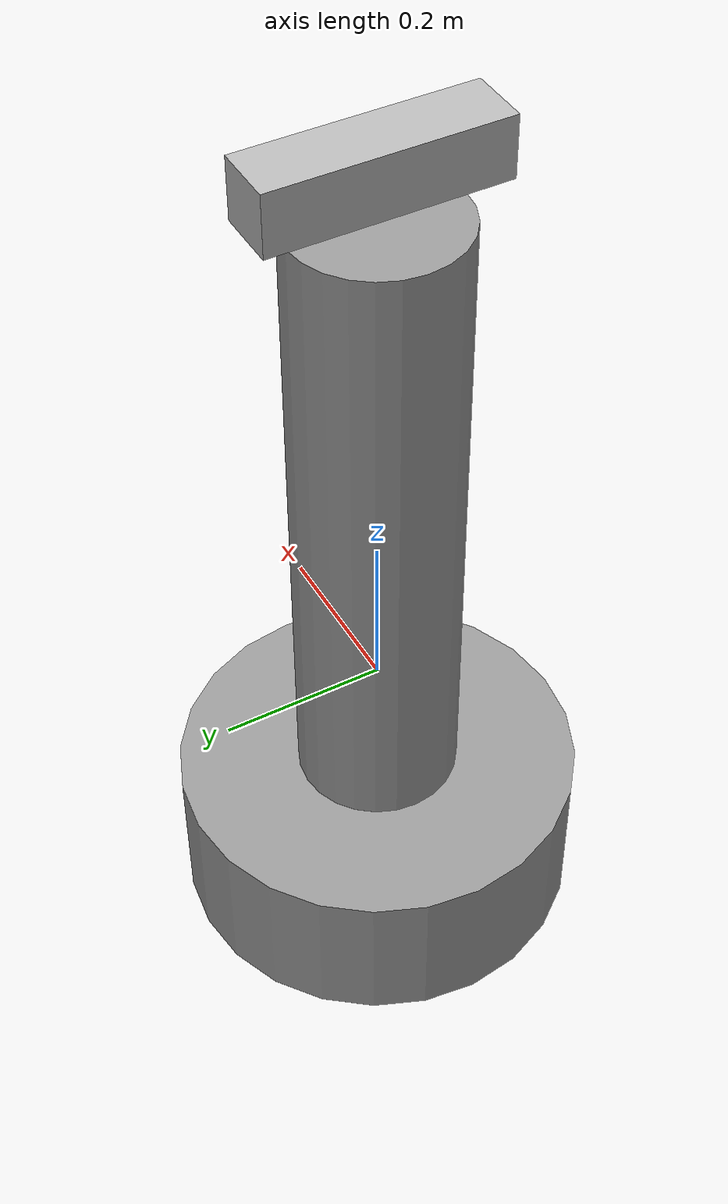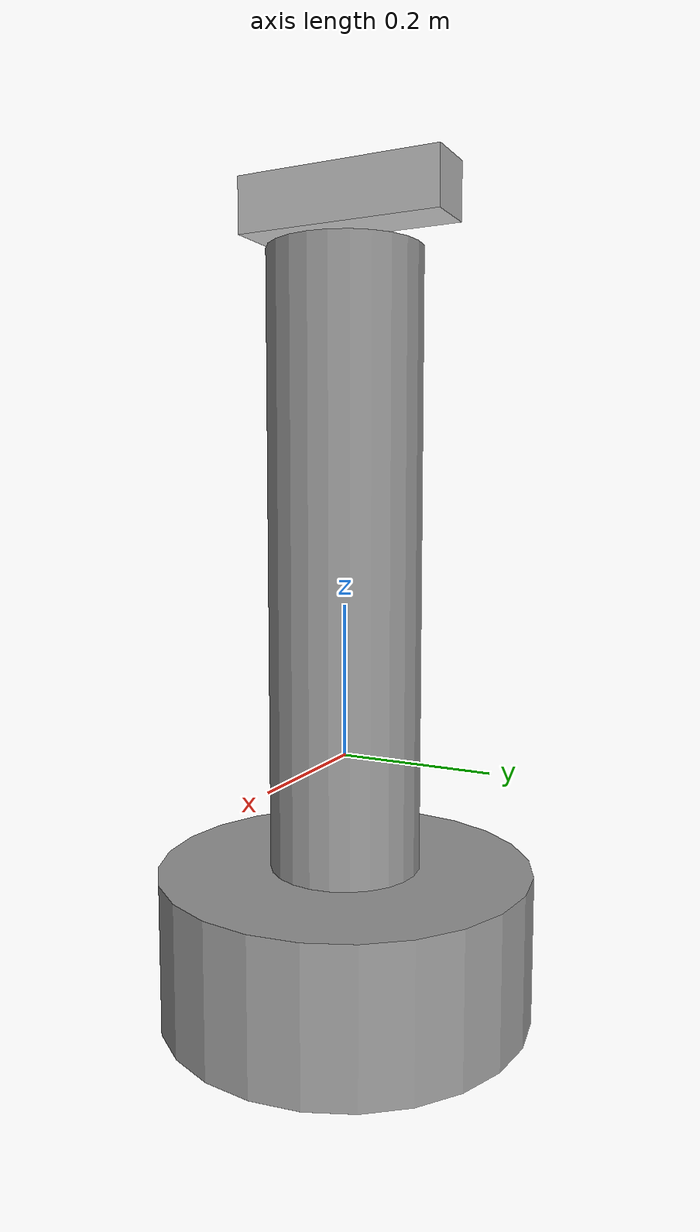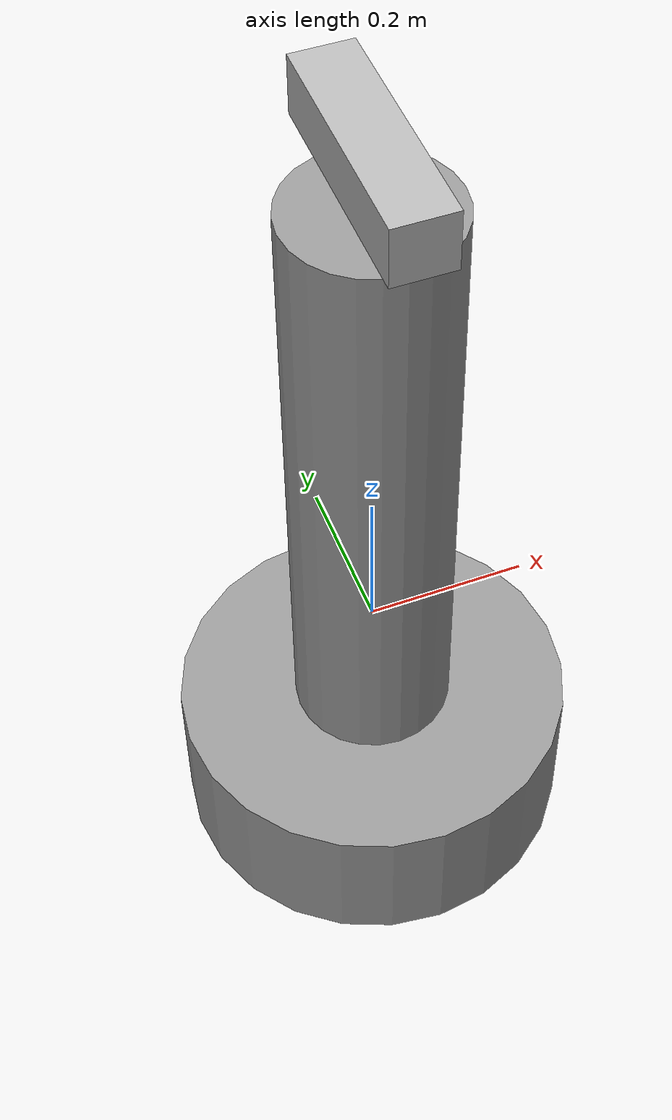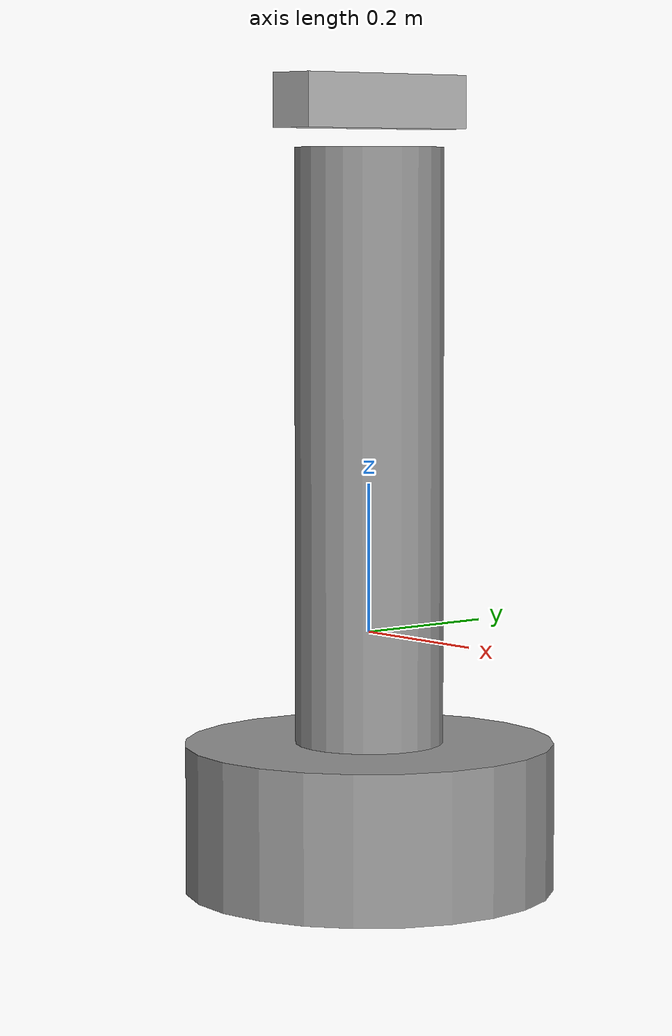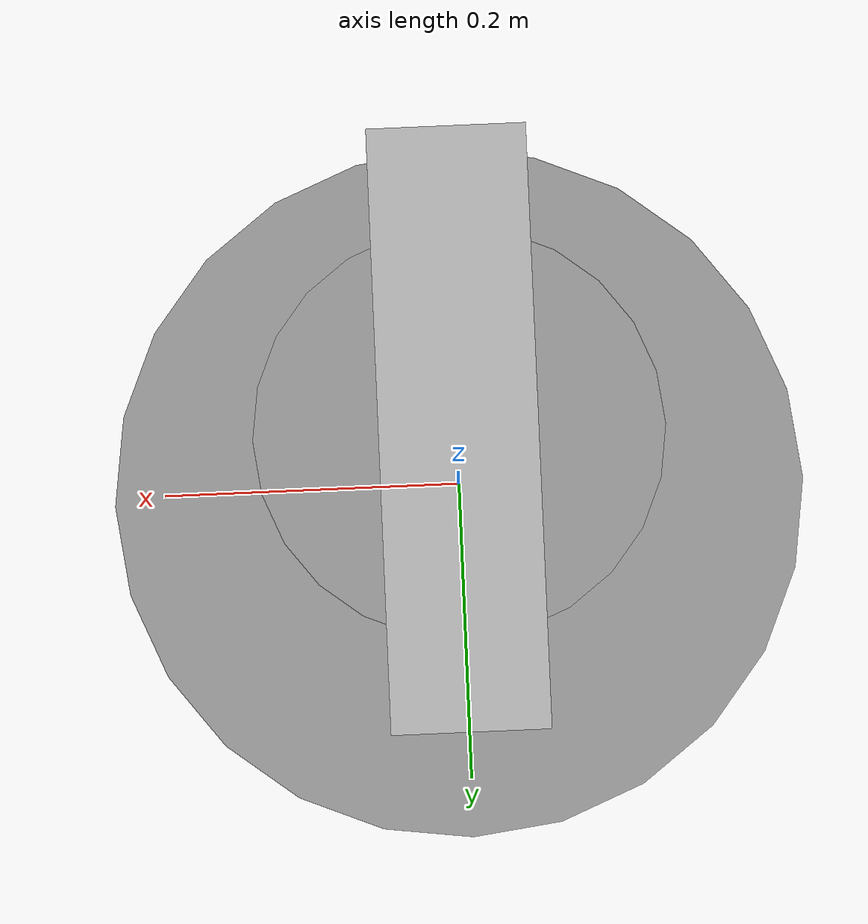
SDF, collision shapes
<?xml version='1.0'?>
<sdf version='1.6'>
  <model name='kinect_robot_1_1'>
    <link name='link_0'>
      <inertial>
        <mass>1</mass>
        <inertia>
          <ixx>0.145833</ixx>
          <ixy>0</ixy>
          <ixz>0</ixz>
          <iyy>0.145833</iyy>
          <iyz>0</iyz>
          <izz>0.125</izz>
        </inertia>
        <pose frame=''>0 0 0 0 -0 0</pose>
      </inertial>
      <pose frame=''>-0 -0 -0.25 0 -0 0</pose>
      <gravity>1</gravity>
      <self_collide>0</self_collide>
      <kinematic>0</kinematic>
      <enable_wind>0</enable_wind>
      <visual name='visual'>
        <pose frame=''>0 0 0 0 -0 0</pose>
        <geometry>
          <cylinder>
            <radius>0.25</radius>
            <length>0.2</length>
          </cylinder>
        </geometry>
        <material>
          <lighting>1</lighting>
          <script>
            <uri>file://media/materials/scripts/gazebo.material</uri>
            <name>Gazebo/Grey</name>
          </script>
          <shader type='vertex'>
            <normal_map>__default__</normal_map>
          </shader>
          <ambient>0.3 0.3 0.3 1</ambient>
          <diffuse>0.7 0.7 0.7 1</diffuse>
          <specular>0.01 0.01 0.01 1</specular>
          <emissive>0 0 0 1</emissive>
        </material>
        <transparency>0</transparency>
        <cast_shadows>1</cast_shadows>
      </visual>
      <collision name='collision'>
        <laser_retro>0</laser_retro>
        <max_contacts>10</max_contacts>
        <pose frame=''>0 0 0 0 -0 0</pose>
        <geometry>
          <cylinder>
            <radius>0.25</radius>
            <length>0.2</length>
          </cylinder>
        </geometry>
        <surface>
          <friction>
            <ode>
              <mu>1</mu>
              <mu2>1</mu2>
              <fdir1>0 0 0</fdir1>
              <slip1>0</slip1>
              <slip2>0</slip2>
            </ode>
            <torsional>
              <coefficient>1</coefficient>
              <patch_radius>0</patch_radius>
              <surface_radius>0</surface_radius>
              <use_patch_radius>1</use_patch_radius>
              <ode>
                <slip>0</slip>
              </ode>
            </torsional>
          </friction>
          <bounce>
            <restitution_coefficient>0</restitution_coefficient>
            <threshold>1e+06</threshold>
          </bounce>
          <contact>
            <collide_without_contact>0</collide_without_contact>
            <collide_without_contact_bitmask>1</collide_without_contact_bitmask>
            <collide_bitmask>1</collide_bitmask>
            <ode>
              <soft_cfm>0</soft_cfm>
              <soft_erp>0.2</soft_erp>
              <kp>1e+13</kp>
              <kd>1</kd>
              <max_vel>0.01</max_vel>
              <min_depth>0</min_depth>
            </ode>
            <bullet>
              <split_impulse>1</split_impulse>
              <split_impulse_penetration_threshold>-0.01</split_impulse_penetration_threshold>
              <soft_cfm>0</soft_cfm>
              <soft_erp>0.2</soft_erp>
              <kp>1e+13</kp>
              <kd>1</kd>
            </bullet>
          </contact>
        </surface>
      </collision>
    </link>
    <link name='link_1'>
      <inertial>
        <mass>1</mass>
        <inertia>
          <ixx>0.145833</ixx>
          <ixy>0</ixy>
          <ixz>0</ixz>
          <iyy>0.145833</iyy>
          <iyz>0</iyz>
          <izz>0.125</izz>
        </inertia>
        <pose frame=''>0 0 0 0 -0 0</pose>
      </inertial>
      <pose frame=''>-0 -0 0.25 0 -0 0</pose>
      <gravity>1</gravity>
      <self_collide>0</self_collide>
      <kinematic>0</kinematic>
      <enable_wind>0</enable_wind>
      <visual name='visual'>
        <pose frame=''>0 0 0 0 -0 0</pose>
        <geometry>
          <cylinder>
            <radius>0.1</radius>
            <length>0.8</length>
          </cylinder>
        </geometry>
        <material>
          <lighting>1</lighting>
          <script>
            <uri>file://media/materials/scripts/gazebo.material</uri>
            <name>Gazebo/Grey</name>
          </script>
          <shader type='vertex'>
            <normal_map>__default__</normal_map>
          </shader>
          <ambient>0.3 0.3 0.3 1</ambient>
          <diffuse>0.7 0.7 0.7 1</diffuse>
          <specular>0.01 0.01 0.01 1</specular>
          <emissive>0 0 0 1</emissive>
        </material>
        <transparency>0</transparency>
        <cast_shadows>1</cast_shadows>
      </visual>
      <collision name='collision'>
        <laser_retro>0</laser_retro>
        <max_contacts>10</max_contacts>
        <pose frame=''>0 0 0 0 -0 0</pose>
        <geometry>
          <cylinder>
            <radius>0.1</radius>
            <length>0.8</length>
          </cylinder>
        </geometry>
        <surface>
          <friction>
            <ode>
              <mu>1</mu>
              <mu2>1</mu2>
              <fdir1>0 0 0</fdir1>
              <slip1>0</slip1>
              <slip2>0</slip2>
            </ode>
            <torsional>
              <coefficient>1</coefficient>
              <patch_radius>0</patch_radius>
              <surface_radius>0</surface_radius>
              <use_patch_radius>1</use_patch_radius>
              <ode>
                <slip>0</slip>
              </ode>
            </torsional>
          </friction>
          <bounce>
            <restitution_coefficient>0</restitution_coefficient>
            <threshold>1e+06</threshold>
          </bounce>
          <contact>
            <collide_without_contact>0</collide_without_contact>
            <collide_without_contact_bitmask>1</collide_without_contact_bitmask>
            <collide_bitmask>1</collide_bitmask>
            <ode>
              <soft_cfm>0</soft_cfm>
              <soft_erp>0.2</soft_erp>
              <kp>1e+13</kp>
              <kd>1</kd>
              <max_vel>0.01</max_vel>
              <min_depth>0</min_depth>
            </ode>
            <bullet>
              <split_impulse>1</split_impulse>
              <split_impulse_penetration_threshold>-0.01</split_impulse_penetration_threshold>
              <soft_cfm>0</soft_cfm>
              <soft_erp>0.2</soft_erp>
              <kp>1e+13</kp>
              <kd>1</kd>
            </bullet>
          </contact>
        </surface>
      </collision>
    </link>
    <model name='kinect'>
      <pose frame=''>0.000445 0.003118 0.710751 0 -0 0</pose>
      <link name='link'>
        <inertial>
          <mass>0.1</mass>
        </inertial>
        <collision name='collision'>
          <geometry>
            <box>
              <size>0.073 0.276 0.072</size>
            </box>
          </geometry>
        </collision>
        <visual name='visual'>
          <geometry>
            <mesh>
              <uri>model://kinect/meshes/kinect.dae</uri>
            </mesh>
          </geometry>
        </visual>
        <sensor name='camera' type='depth'>
          <update_rate>20</update_rate>
          <camera name='__default__'>
            <horizontal_fov>1.0472</horizontal_fov>
            <image>
              <width>500</width>
              <height>500</height>
              <format>R8G8B8</format>
            </image>
            <clip>
              <near>0.1</near>
              <far>3000</far>
            </clip>
          </camera>
          <plugin name='camera_plugin' filename='libgazebo_ros_openni_kinect.so'>
            <baseline>0.2</baseline>
            <alwaysOn>1</alwaysOn>
            <updateRate>0.0</updateRate>
            <cameraName>camera_ir</cameraName>
            <imageTopicName>/camera/depth/image_raw</imageTopicName>
            <cameraInfoTopicName>/camera/depth/camera_info</cameraInfoTopicName>
            <depthImageTopicName>/camera/depth/image_raw</depthImageTopicName>
            <depthImageInfoTopicName>/camera/depth/camera_info</depthImageInfoTopicName>
            <pointCloudTopicName>/camera/depth/points</pointCloudTopicName>
            <frameName>camera_link</frameName>
            <pointCloudCutoff>0.1</pointCloudCutoff>
            <distortionK1>0</distortionK1>
            <distortionK2>0</distortionK2>
            <distortionK3>0</distortionK3>
            <distortionT1>0</distortionT1>
            <distortionT2>0</distortionT2>
            <CxPrime>0</CxPrime>
            <Cx>0</Cx>
            <Cy>0</Cy>
            <focalLength>0</focalLength>
            <hackBaseline>0</hackBaseline>
          </plugin>
        </sensor>
      </link>
    </model>
    <joint name='link_0_JOINT_0' type='revolute'>
      <parent>link_0</parent>
      <child>link_1</child>
      <pose frame=''>0 0 0 0 -0 0</pose>
      <axis>
        <xyz>0 0 1</xyz>
        <use_parent_model_frame>0</use_parent_model_frame>
        <limit>
          <lower>-1.79769e+308</lower>
          <upper>1.79769e+308</upper>
          <effort>-1</effort>
          <velocity>-1</velocity>
        </limit>
        <dynamics>
          <spring_reference>0</spring_reference>
          <spring_stiffness>0</spring_stiffness>
          <damping>0</damping>
        </dynamics>
      </axis>
      <physics>
        <ode>
          <limit>
            <cfm>0</cfm>
            <erp>0.2</erp>
          </limit>
          <suspension>
            <cfm>0</cfm>
            <erp>0.2</erp>
          </suspension>
        </ode>
      </physics>
    </joint>
    <joint name='link_1_JOINT_1' type='fixed'>
      <parent>link_1</parent>
      <child>kinect::link</child>
      <pose frame=''>0 0 0 0 -0 0</pose>
      <physics>
        <ode>
          <limit>
            <cfm>0</cfm>
            <erp>0.2</erp>
          </limit>
          <suspension>
            <cfm>0</cfm>
            <erp>0.2</erp>
          </suspension>
        </ode>
      </physics>
    </joint>
    <static>0</static>
    <allow_auto_disable>1</allow_auto_disable>
    <plugin name="kinect_rotation_control" filename="/home/athultr/catkin_ws/src/kinect_robot_gazebo/plugins/libkinect_robot_rotation_plugin.so">
      <velocity>0.1</velocity>
    </plugin>
  </model>
</sdf>
